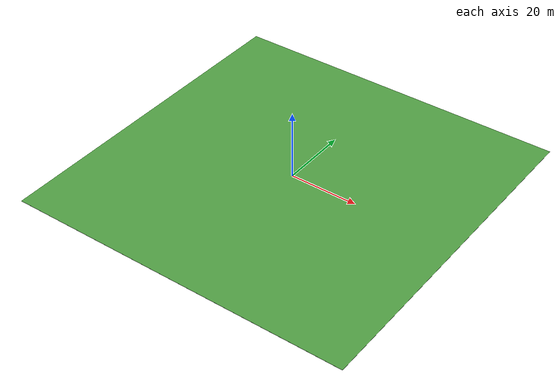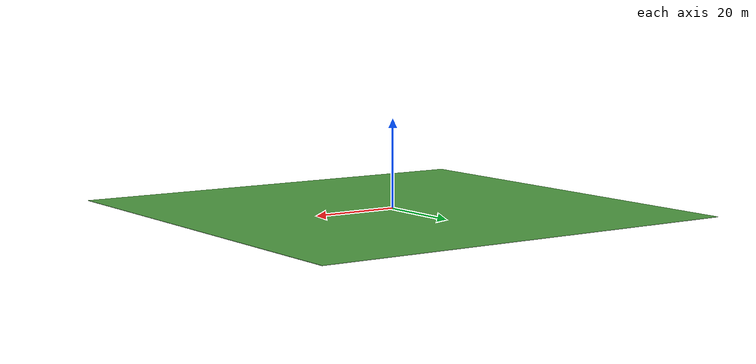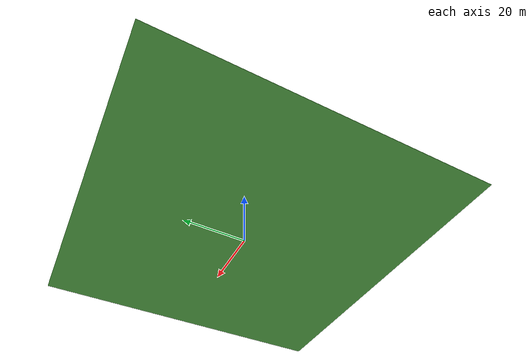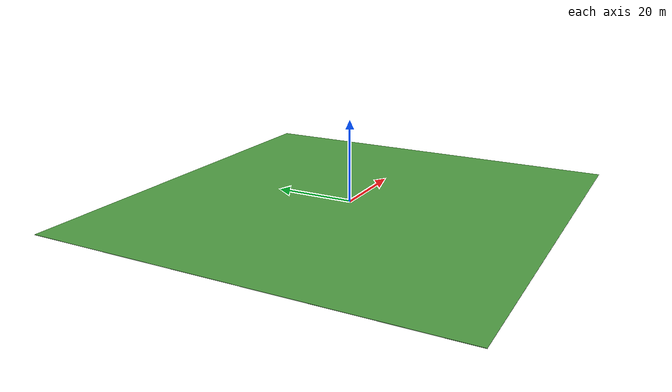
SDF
<?xml version="1.0" ?>
<sdf version="1.5">
  <model name="hca_plane">
    <static>true</static>
    <link name="link">
      <collision name="collision">
        <geometry>
          <box>
            <size>100.82 100.01 0.1</size>
          </box>
        </geometry>
        <surface>
          <friction>
            <ode>
              <mu>100</mu>
              <mu2>50</mu2>
            </ode>
          </friction>
        </surface>
      </collision>
      <visual name="visual">
        <cast_shadows>false</cast_shadows>
        <geometry>
          <box>
            <size>100.82 100.01 0.1</size>
          </box>
        </geometry>
        <material>
          <script>
            <uri>model://hca_plane/materials/scripts/ground_plane.material</uri>
            <uri>model://hca_plane/materials/scripts</uri>
            <uri>model://hca_plane/materials/textures</uri>

            <name>GroundPlane/Grass</name>
          </script>
        </material>
      </visual>
    </link>
  </model>
</sdf>
